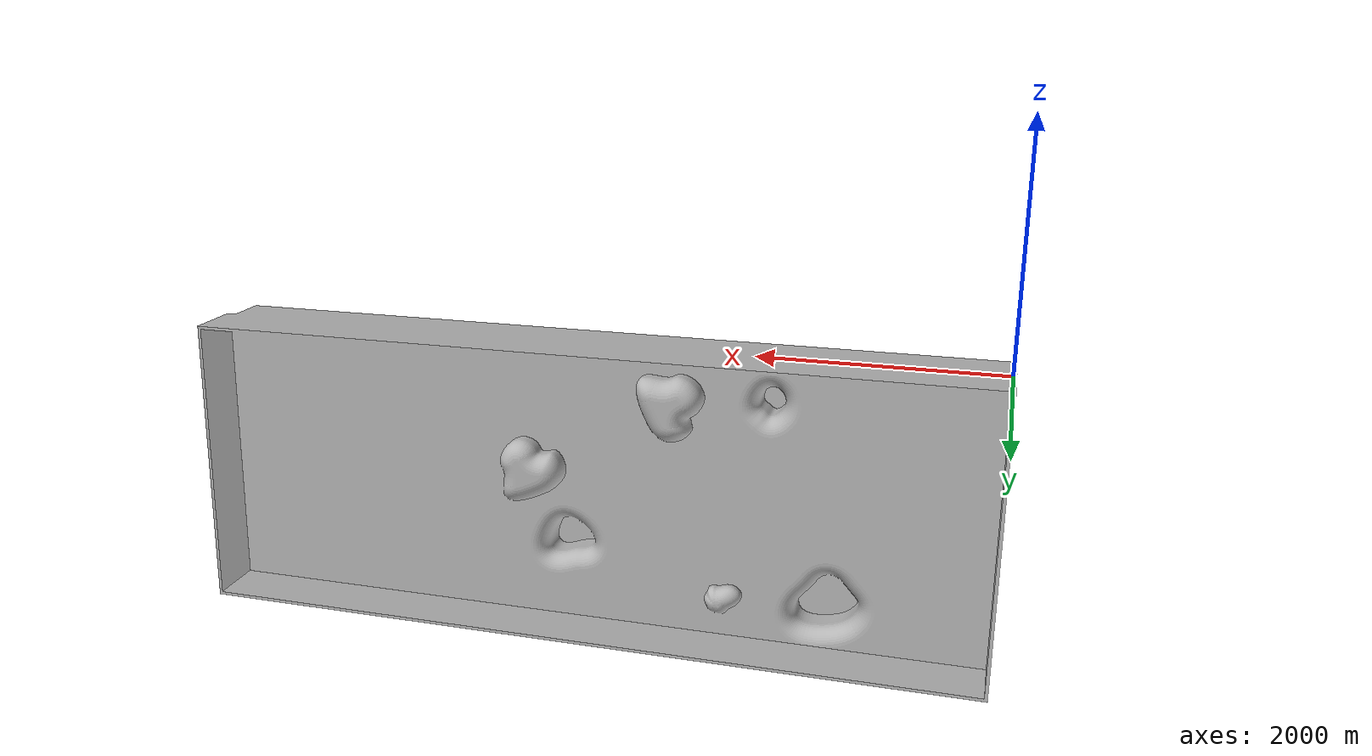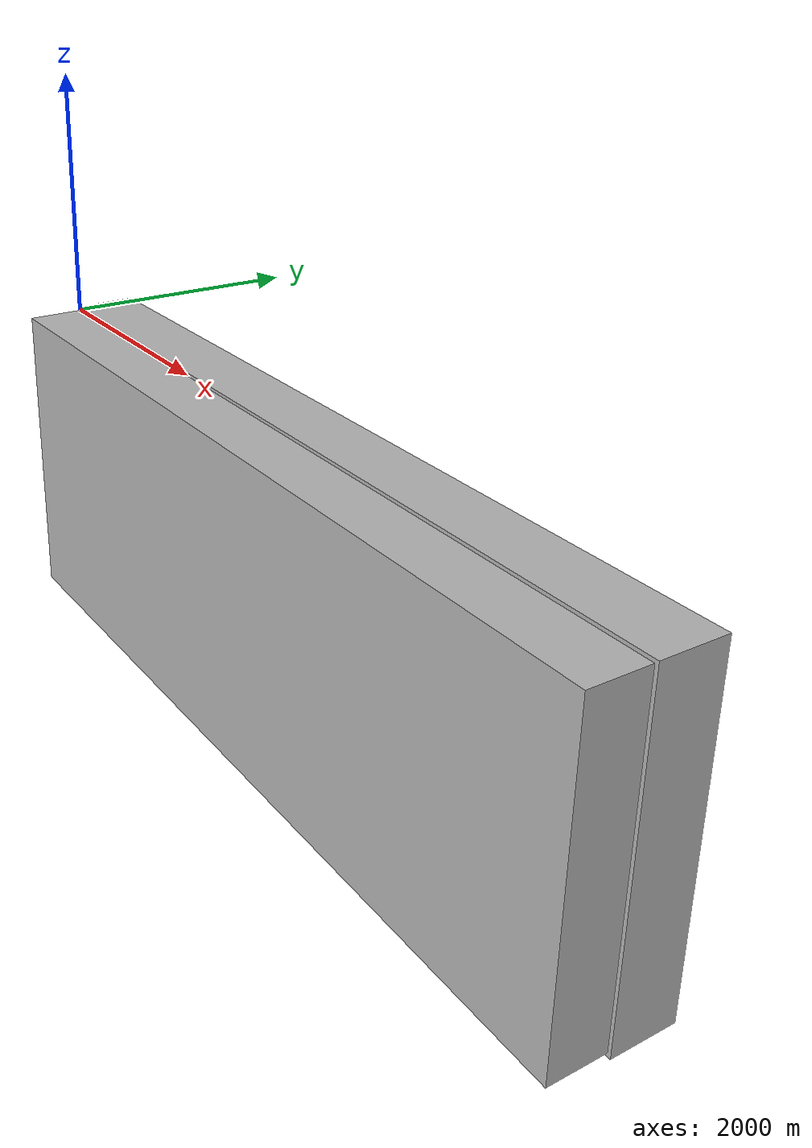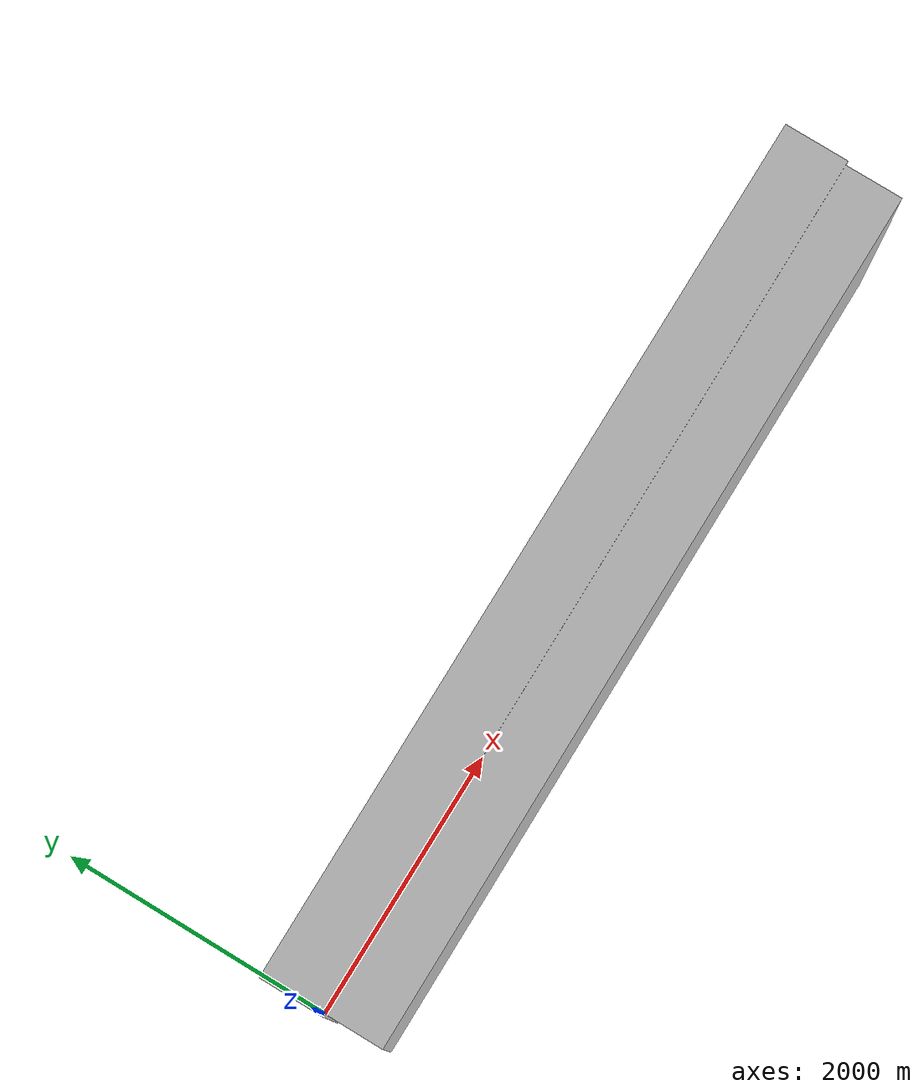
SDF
<?xml version="1.0" ?>
<sdf version="1.0">
  <model name="NASA Lunabotics 2022 Competition Arena">
    <pose>0 0 0  0 0 0</pose>
    <static>true</static>
    <link name="body">
      <collision name="collision">
        <geometry>
          <mesh><uri>model://lunabotics_arena/meshes/lunabotics_arena.stl</uri></mesh>
        </geometry>
      </collision>
      <visual name="visual">
        <geometry>
          <mesh><uri>model://lunabotics_arena/meshes/lunabotics_arena.stl</uri></mesh>
        </geometry>
      </visual>
    </link>
  </model>
</sdf>
